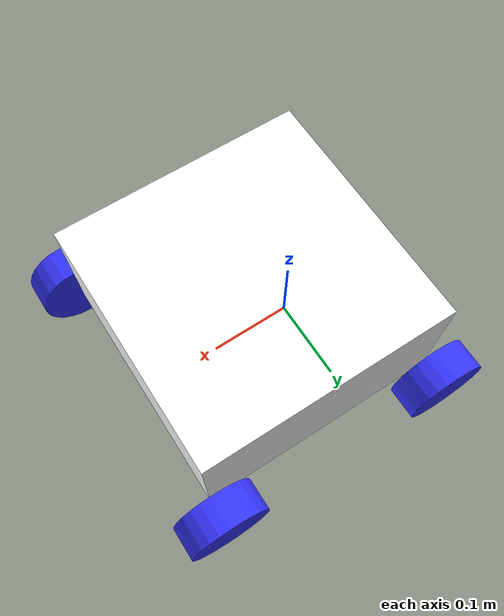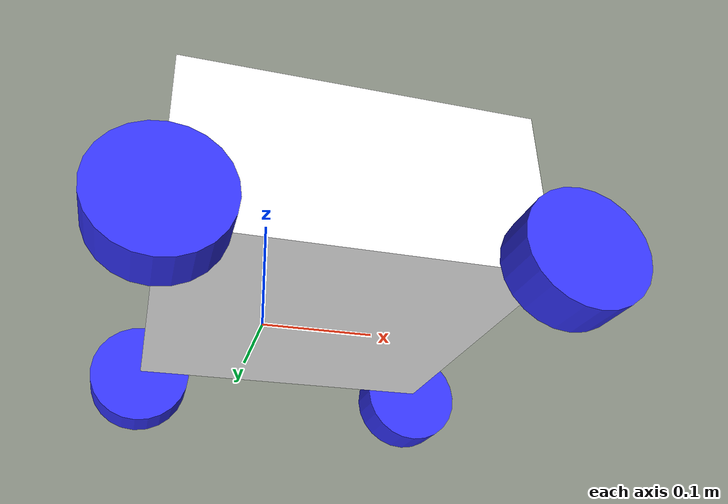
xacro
<?xml version="1.0"?>
<robot xmlns:xacro="http://www.ros.org/wiki/xacro" >
        <xacro:include filename="inertial_macros.xacro"/>

    <material name="white">
        <color rgba="1 1 1 1"/>
    </material>
    <material name="orange">
        <color rgba="1 0.3 0.1 1"/>
    </material>
    <material name="blue">
        <color rgba="0.2 0.2 1 1"/>
    </material>
    <material name="black">
        <color rgba="0 0 0 1"/>
    </material>

    <link name="base_link">

    </link>

    <joint name="base_footprint_joint" type="fixed">
        <parent link="base_link"/>
        <child link="base_footprint"/>
        <origin xyz="0 0 0" rpy="0 0 0"/>
    </joint>

    <link name="base_footprint">

    </link>

    <joint name="chassis_joint" type="fixed">
        <parent link="base_link"/>
        <child link="chassis"/>
        <origin xyz="-0.1 0 0"/>
    </joint>

    <link name="chassis">
        <visual>
            <origin xyz="0.15 0 0.075"/>
            <geometry>
                <box size="0.3 0.3 0.15"/>
            </geometry>
            <material name="white"/>
        </visual>
        <collision>
            <origin xyz="0.15 0 0.075"/>
            <geometry>
                <box size="0.3 0.3 0.15"/>
            </geometry>
            <material name="white"/>
        </collision>
        <xacro:inertial_box mass="0.5" x="0.3" y="0.3" z="0.15">
            <origin xyz="0.15 0 0.075" rpy="0 0 0"/>
        </xacro:inertial_box>
    </link>
    <gazebo reference="chassis">
        <material>Gazebo/Red</material>
    </gazebo>
 <joint name="lw1" type="fixed">
        <parent link="base_link"/>
        <child link="l1"/>
        <origin xyz="0.2 0.175 0" rpy="-${pi/2} 0 0" />
        <axis xyz="0 0 1"/>
 </joint>
 <link name="l1">
        <visual>
            <geometry>
                <cylinder radius="0.05" length="0.04"/>
            </geometry>
            <material name="blue"/>
        </visual>
        <collision>
            <geometry>
                <cylinder radius="0.05" length="0.04"/>
            </geometry>
        </collision>
        <xacro:inertial_cylinder mass="0.1" length="0.04" radius="0.05">
            <origin xyz="0 0 0" rpy="0 0 0"/>
        </xacro:inertial_cylinder>
    </link>
    <gazebo reference="l1">
        <material>Gazebo/Black</material>
        <mu1 value="0.001"/>
        <mu2 value="0.001"/>
    </gazebo>

    <joint name="rw1" type="fixed">
        <parent link="base_link"/>
        <child link="r1"/>
        <origin xyz="0.2 -0.175 0" rpy="${pi/2} 0 0" />
        <axis xyz="0 0 -1"/>
    </joint>

    <link name="r1">
        <visual>
            <geometry>
                <cylinder radius="0.05" length="0.04"/>
            </geometry>
            <material name="blue"/>
        </visual>
        <collision>
            <geometry>
                <cylinder radius="0.05" length="0.04"/>
            </geometry>
        </collision>
        <xacro:inertial_cylinder mass="0.1" length="0.04" radius="0.05">
            <origin xyz="0 0 0" rpy="0 0 0"/>
        </xacro:inertial_cylinder>
    </link>
    <gazebo reference="r1">
        <material>Gazebo/Black</material>
        <mu1 value="0.001"/>
        <mu2 value="0.001"/>
    </gazebo>

    <joint name="rw2" type="continuous">
        <parent link="base_link"/>
        <child link="r2"/>
        <origin xyz="-0.1 -0.175 0" rpy="${pi/2} 0 0" />
        <axis xyz="0 0 2"/>
    </joint>

    <link name="r2">
        <visual>
            <geometry>
                <cylinder radius="0.05" length="0.04"/>
            </geometry>
            <material name="blue"/>
        </visual>
        <collision>
            <geometry>
                <cylinder radius="0.05" length="0.04"/>
            </geometry>
        </collision>
        <xacro:inertial_cylinder mass="0.1" length="0.04" radius="0.05">
            <origin xyz="0 0 0" rpy="0 0 0"/>
        </xacro:inertial_cylinder>
    </link>
    <gazebo reference="r2">
        <material>Gazebo/Black</material>
    </gazebo>

    <joint name="lw2" type="continuous">
        <parent link="base_link"/>
        <child link="l2"/>
        <origin xyz="-0.1 0.175 0" rpy="${pi/2} 0 0" />
        <axis xyz="0 0 -1"/>
    </joint>

    <link name="l2">
        <visual>
            <geometry>
                <cylinder radius="0.05" length="0.04"/>
            </geometry>
            <material name="blue"/>
        </visual>
        <collision>
            <geometry>
                <cylinder radius="0.05" length="0.04"/>
            </geometry>
        </collision>
        <xacro:inertial_cylinder mass="0.1" length="0.04" radius="0.05">
            <origin xyz="0 0 0" rpy="0 0 0"/>
        </xacro:inertial_cylinder>
    </link>
    <gazebo reference="l2">
        <material>Gazebo/Black</material>
    </gazebo>

</robot>
